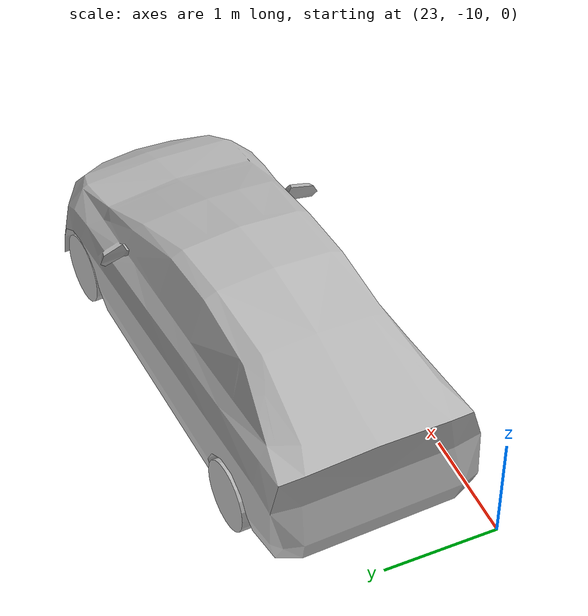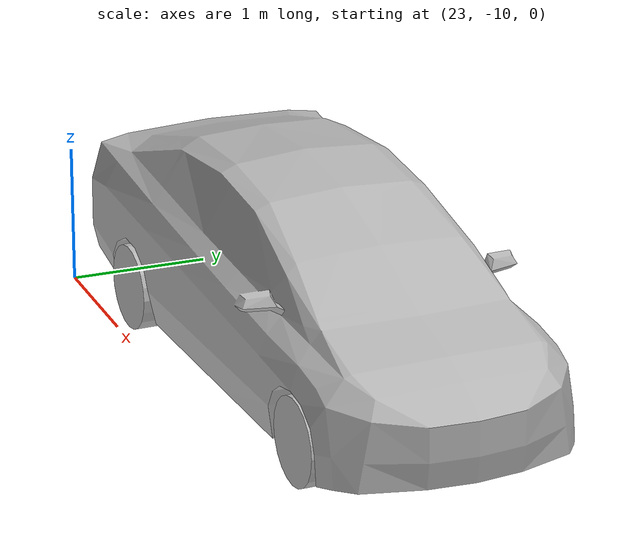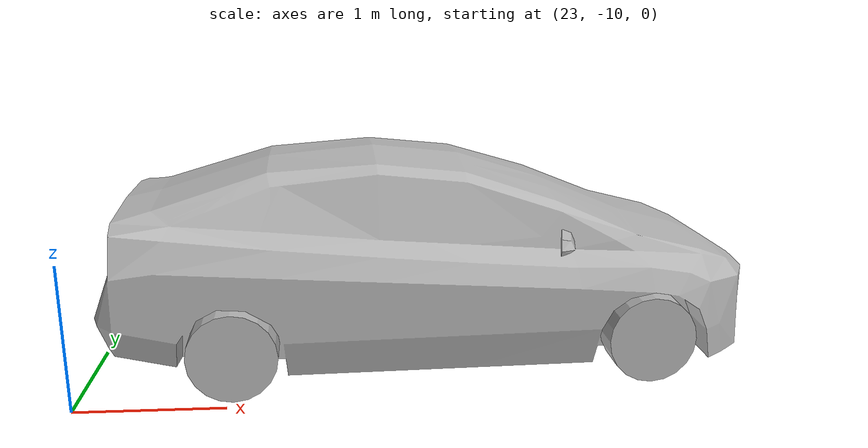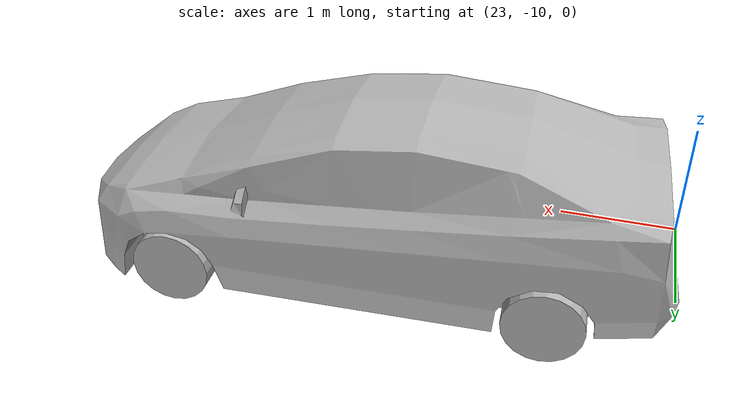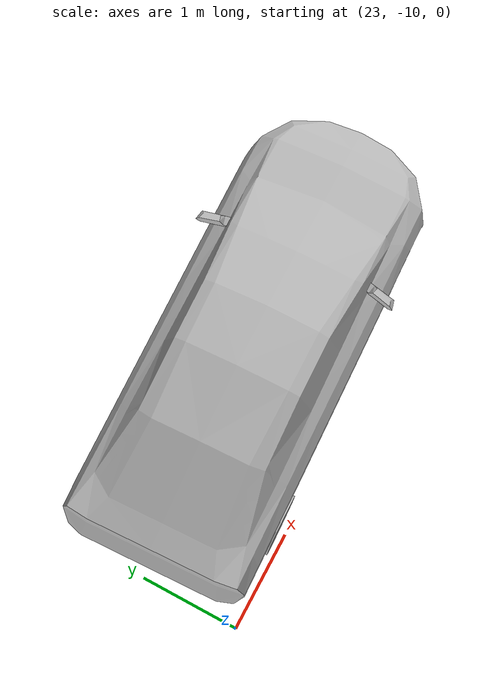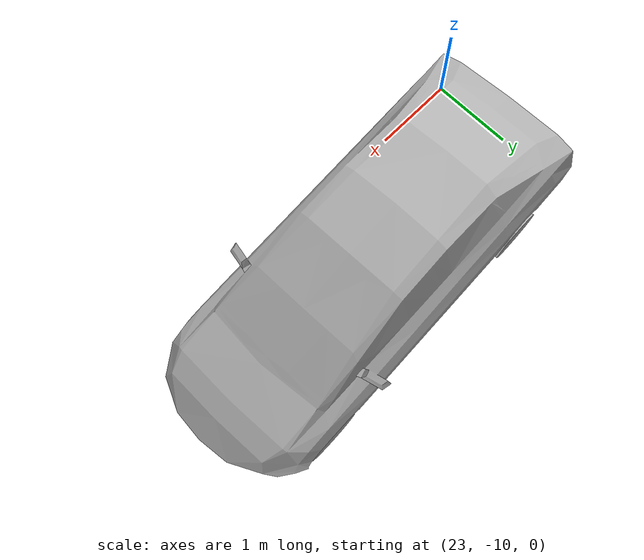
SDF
<sdf version="1.6">
 <world name="default">
  <model name="prius_clone_clone">
   <link name="base_link">
    <inertial>
     <mass>1</mass>
     <inertia><ixx>0.001</ixx><ixy>0</ixy><ixz>0</ixz><iyy>0.001</iyy><iyz>0</iyz><izz>0.001</izz></inertia>
    </inertial>
   </link>
   <link name="chassis">
    <pose>1.45 0 0 0 -0 1.57</pose>
    <inertial>
     <pose>-0 -0.002735 0.483209 0 -0 1.5708</pose>
     <mass>1371</mass>
     <inertia>
      <ixx>2591.3</ixx>
      <ixy>0.000184475</ixy>
      <ixz>-0.702035</ixz>
      <iyy>651.702</iyy>
      <iyz>2.57872e-06</iyz>
      <izz>2744.57</izz>
     </inertia>
    </inertial>
    <collision name="chassis_collision">
     <pose>0 0.05 0.625 0 -0 0</pose>
     <geometry><box><size>1.7526 2.1 0.95</size></box></geometry>
    </collision>
    <collision name="chassis_fixed_joint_lump__front_bumper_collision_1">
     <pose>0 -2 0.458488 0 -0 0</pose>
     <geometry><box><size>1.33728 0.48 0.566691</size></box></geometry>
    </collision>
    <collision name="chassis_fixed_joint_lump__hood_collision_2">
     <pose>0 -1.90084 0.676305 0.341247 -0 0</pose>
     <geometry><box><size>1.59797 0.493107 0.265468</size></box></geometry>
    </collision>
    <collision name="chassis_fixed_joint_lump__windshield_collision_3">
     <pose>0 -0.875105 1.03227 0.335476 -0 0</pose>
     <geometry><box><size>1.16838 1.65425 0.272347</size></box></geometry>
    </collision>
    <collision name="chassis_fixed_joint_lump__top_front_collision_4">
     <pose>0 0.161236 1.38604 0.13503 -0 0</pose>
     <geometry><box><size>1.27915 0.625988 0.171868</size></box></geometry>
    </collision>
    <collision name="chassis_fixed_joint_lump__top_rear_collision_5">
     <pose>0 0.817696 1.36007 -0.068997 0 0</pose>
     <geometry><box><size>1.28513 0.771189 0.226557</size></box></geometry>
    </collision>
    <collision name="chassis_fixed_joint_lump__rear_window_collision_6">
     <pose>0 1.64053 1.17513 -0.262017 0 0</pose>
     <geometry><box><size>1.26785 1.11634 0.244286</size></box></geometry>
    </collision>
    <collision name="chassis_fixed_joint_lump__trunk_collision_7">
     <pose>0 1.63706 0.88818 0 -0 0</pose>
     <geometry><box><size>1.78806 1.13899 0.482746</size></box></geometry>
    </collision>
    <collision name="chassis_fixed_joint_lump__back_bumper_collision_8">
     <pose>0 2.05445 0.57787 0 -0 0</pose>
     <geometry><box><size>1.78165 0.512093 0.581427</size></box></geometry>
    </collision>
    <visual name="chassis_visual">
     <geometry>
      <mesh>
       <scale>0.01 0.01 0.01</scale>
       <uri>/home/kostas/datmo_ws/src/car_demo-master/prius_description/meshes/hybrid_body.obj</uri>
      </mesh>
     </geometry>
    </visual>
   </link>
   <joint name="base_link_connection" type="revolute">
    <child>chassis</child>
    <parent>base_link</parent>
    <axis>
     <limit><lower>0</lower><upper>0</upper></limit>
     <dynamics>
      <damping>0</damping>
      <friction>0</friction>
      <spring_reference>0</spring_reference>
      <spring_stiffness>0</spring_stiffness>
     </dynamics>
     <use_parent_model_frame>1</use_parent_model_frame>
     <xyz>0 0 1</xyz>
    </axis>
    <physics><ode><limit><cfm>0</cfm><erp>0.2</erp></limit></ode></physics>
   </joint>
   <link name="fl_axle">
    <pose>2.86061 0.765877 0.3 0 -0 1.57</pose>
    <inertial>
     <mass>1</mass>
     <inertia><ixx>0.004</ixx><ixy>0</ixy><ixz>0</ixz><iyy>0.004</iyy><iyz>0</iyz><izz>0.004</izz></inertia>
    </inertial>
   </link>
   <joint name="front_left_steer_joint" type="revolute">
    <child>fl_axle</child>
    <parent>chassis</parent>
    <axis>
     <xyz>0 0 1</xyz>
     <limit><lower>-1e+16</lower><upper>1e+16</upper></limit>
     <dynamics><spring_reference>0</spring_reference><spring_stiffness>0</spring_stiffness></dynamics>
     <use_parent_model_frame>1</use_parent_model_frame>
    </axis>
   </joint>
   <link name="front_left_wheel">
    <pose>2.86061 0.765877 0.3 0 -0 1.57</pose>
    <inertial>
     <mass>11</mass>
     <inertia>
      <ixx>0.586312</ixx>
      <ixy>0</ixy>
      <ixz>0</ixz>
      <iyy>0.335529</iyy>
      <iyz>0</iyz>
      <izz>0.335529</izz>
     </inertia>
    </inertial>
    <collision name="front_left_wheel_collision_collision">
     <geometry><sphere><radius>0.31265</radius></sphere></geometry>
     <surface>
      <contact><ode><kp>1e+08</kp><min_depth>0.005</min_depth></ode></contact>
      <friction><ode><mu>0.9</mu><mu2>0.9</mu2></ode></friction>
     </surface>
    </collision>
    <visual name="front_left_wheel_visual">
     <geometry>
      <mesh>
       <scale>0.01 0.01 0.01</scale>
       <uri>/home/kostas/datmo_ws/src/car_demo-master/prius_description/meshes/wheel.obj</uri>
      </mesh>
     </geometry>
     <material><script><uri>__default__</uri><name>__default__</name></script></material>
    </visual>
   </link>
   <joint name="front_left_wheel_joint" type="revolute">
    <child>front_left_wheel</child>
    <parent>fl_axle</parent>
    <axis>
     <xyz>0.000796 1 0</xyz>
     <limit><lower>-1e+16</lower><upper>1e+16</upper></limit>
     <dynamics><spring_reference>0</spring_reference><spring_stiffness>0</spring_stiffness></dynamics>
     <use_parent_model_frame>1</use_parent_model_frame>
    </axis>
   </joint>
   <link name="fr_axle">
    <pose>2.85939 -0.768123 0.3 0 -0 1.57</pose>
    <inertial>
     <mass>1</mass>
     <inertia><ixx>0.004</ixx><ixy>0</ixy><ixz>0</ixz><iyy>0.004</iyy><iyz>0</iyz><izz>0.004</izz></inertia>
    </inertial>
   </link>
   <joint name="front_right_steer_joint" type="revolute">
    <child>fr_axle</child>
    <parent>chassis</parent>
    <axis>
     <xyz>0 0 1</xyz>
     <limit><lower>-1e+16</lower><upper>1e+16</upper></limit>
     <dynamics><spring_reference>0</spring_reference><spring_stiffness>0</spring_stiffness></dynamics>
     <use_parent_model_frame>1</use_parent_model_frame>
    </axis>
   </joint>
   <link name="front_right_wheel">
    <pose>2.85939 -0.768123 0.3 0 -0 1.57</pose>
    <inertial>
     <mass>11</mass>
     <inertia>
      <ixx>0.586312</ixx>
      <ixy>0</ixy>
      <ixz>0</ixz>
      <iyy>0.335529</iyy>
      <iyz>0</iyz>
      <izz>0.335529</izz>
     </inertia>
    </inertial>
    <collision name="front_right_wheel_collision_collision">
     <geometry><sphere><radius>0.31265</radius></sphere></geometry>
     <surface>
      <contact><ode><kp>1e+08</kp><min_depth>0.005</min_depth></ode></contact>
      <friction><ode><mu>0.9</mu><mu2>0.9</mu2></ode></friction>
     </surface>
    </collision>
    <visual name="front_right_wheel_visual">
     <geometry>
      <mesh>
       <scale>0.01 0.01 0.01</scale>
       <uri>/home/kostas/datmo_ws/src/car_demo-master/prius_description/meshes/wheel.obj</uri>
      </mesh>
     </geometry>
     <material><script><uri>__default__</uri><name>__default__</name></script></material>
    </visual>
   </link>
   <joint name="front_right_wheel_joint" type="revolute">
    <child>front_right_wheel</child>
    <parent>fr_axle</parent>
    <axis>
     <xyz>0.000796 1 0</xyz>
     <limit><lower>-1e+16</lower><upper>1e+16</upper></limit>
     <dynamics><spring_reference>0</spring_reference><spring_stiffness>0</spring_stiffness></dynamics>
     <use_parent_model_frame>1</use_parent_model_frame>
    </axis>
   </joint>
   <link name="rear_left_wheel">
    <pose>0.000632 0.794154 0.3 0 -0 1.57</pose>
    <inertial>
     <mass>11</mass>
     <inertia>
      <ixx>0.586312</ixx>
      <ixy>0</ixy>
      <ixz>0</ixz>
      <iyy>0.335529</iyy>
      <iyz>0</iyz>
      <izz>0.335529</izz>
     </inertia>
    </inertial>
    <collision name="rear_left_wheel_collision_collision">
     <geometry><sphere><radius>0.31265</radius></sphere></geometry>
     <surface>
      <contact><ode><kp>1e+08</kp><min_depth>0.005</min_depth></ode></contact>
      <friction><ode><mu>0.9</mu><mu2>0.9</mu2></ode></friction>
     </surface>
    </collision>
    <visual name="rear_left_wheel_visual">
     <geometry>
      <mesh>
       <scale>0.01 0.01 0.01</scale>
       <uri>/home/kostas/datmo_ws/src/car_demo-master/prius_description/meshes/wheel.obj</uri>
      </mesh>
     </geometry>
     <material><script><uri>__default__</uri><name>__default__</name></script></material>
    </visual>
   </link>
   <joint name="rear_left_wheel_joint" type="revolute">
    <child>rear_left_wheel</child>
    <parent>chassis</parent>
    <axis>
     <xyz>0.000796 1 0</xyz>
     <limit><lower>-1e+16</lower><upper>1e+16</upper></limit>
     <dynamics><spring_reference>0</spring_reference><spring_stiffness>0</spring_stiffness></dynamics>
     <use_parent_model_frame>1</use_parent_model_frame>
    </axis>
   </joint>
   <link name="rear_right_wheel">
    <pose>-0.000631 -0.791845 0.3 0 -0 1.57</pose>
    <inertial>
     <mass>11</mass>
     <inertia>
      <ixx>0.586312</ixx>
      <ixy>0</ixy>
      <ixz>0</ixz>
      <iyy>0.335529</iyy>
      <iyz>0</iyz>
      <izz>0.335529</izz>
     </inertia>
    </inertial>
    <collision name="rear_right_wheel_collision_collision">
     <geometry><sphere><radius>0.31265</radius></sphere></geometry>
     <surface>
      <contact><ode><kp>1e+08</kp><min_depth>0.005</min_depth></ode></contact>
      <friction><ode><mu>0.9</mu><mu2>0.9</mu2></ode></friction>
     </surface>
    </collision>
    <visual name="rear_right_wheel_visual">
     <geometry>
      <mesh>
       <scale>0.01 0.01 0.01</scale>
       <uri>/home/kostas/datmo_ws/src/car_demo-master/prius_description/meshes/wheel.obj</uri>
      </mesh>
     </geometry>
     <material><script><uri>__default__</uri><name>__default__</name></script></material>
    </visual>
   </link>
   <joint name="rear_right_wheel_joint" type="revolute">
    <child>rear_right_wheel</child>
    <parent>chassis</parent>
    <axis>
     <xyz>0.000796 1 0</xyz>
     <limit><lower>-1e+16</lower><upper>1e+16</upper></limit>
     <dynamics><spring_reference>0</spring_reference><spring_stiffness>0</spring_stiffness></dynamics>
     <use_parent_model_frame>1</use_parent_model_frame>
    </axis>
   </joint>
   <link name="steering_wheel">
    <pose>2.07815 0.357234 0.988243 -1.3021 0 1.57</pose>
    <inertial>
     <mass>1</mass>
     <inertia><ixx>0.145833</ixx><ixy>0</ixy><ixz>0</ixz><iyy>0.145833</iyy><iyz>0</iyz><izz>0.125</izz></inertia>
    </inertial>
    <visual name="steering_wheel_visual">
     <pose>0 0 0 1.3021 -0 0</pose>
     <geometry>
      <mesh>
       <scale>0.01 0.01 0.01</scale>
       <uri>/home/kostas/datmo_ws/src/car_demo-master/prius_description/meshes/steering_wheel.obj</uri>
      </mesh>
     </geometry>
    </visual>
   </link>
   <joint name="steering_joint" type="revolute">
    <child>steering_wheel</child>
    <parent>chassis</parent>
    <axis>
     <xyz>-0.964118 0.000768 0.265474</xyz>
     <limit><lower>-1e+16</lower><upper>1e+16</upper></limit>
     <dynamics><spring_reference>0</spring_reference><spring_stiffness>0</spring_stiffness></dynamics>
     <use_parent_model_frame>1</use_parent_model_frame>
    </axis>
   </joint>
   <plugin name="actorhybrid_drive" filename="libActor.so">
    <controlTopic>actor_2</controlTopic>
    <chassis>chassis</chassis>
    <front_left_wheel>front_left_wheel_joint</front_left_wheel>
    <front_right_wheel>front_right_wheel_joint</front_right_wheel>
    <front_left_wheel_steering>front_left_steer_joint</front_left_wheel_steering>
    <front_right_wheel_steering>front_right_steer_joint</front_right_wheel_steering>
    <back_left_wheel>rear_left_wheel_joint</back_left_wheel>
    <back_right_wheel>rear_right_wheel_joint</back_right_wheel>
    <steering_wheel>steering_joint</steering_wheel>
    <chassis_aero_force_gain>0.63045</chassis_aero_force_gain>
    <front_torque>700.4004393000001</front_torque>
    <back_torque>0</back_torque>
    <front_brake_torque>1031.28052716</front_brake_torque>
    <back_brake_torque>687.5203514400001</back_brake_torque>
    <max_speed>37.998337013956565</max_speed>
    <min_gas_flow>8.981854013171626e-05</min_gas_flow>
    <gas_efficiency>0.371</gas_efficiency>
    <battery_charge_watt_hours>291</battery_charge_watt_hours>
    <battery_discharge_watt_hours>214</battery_discharge_watt_hours>
    <max_steer>0.8458</max_steer>
    <flwheel_steering_p_gain>1e4</flwheel_steering_p_gain>
    <frwheel_steering_p_gain>1e4</frwheel_steering_p_gain>
    <flwheel_steering_i_gain>0</flwheel_steering_i_gain>
    <frwheel_steering_i_gain>0</frwheel_steering_i_gain>
    <flwheel_steering_d_gain>3e2</flwheel_steering_d_gain>
    <frwheel_steering_d_gain>3e2</frwheel_steering_d_gain>
    <robotNamespace>/</robotNamespace>
   </plugin>
   <plugin name="joint_state_publisher" filename="libgazebo_ros_joint_state_publisher.so">
    <jointName>rear_right_wheel_joint, rear_left_wheel_joint, front_right_wheel_joint, front_left_wheel_joint, front_right_steer_joint, front_left_steer_joint, steering_joint</jointName>
    <updateRate>100.0</updateRate>
    <alwaysOn>1</alwaysOn>
    <robotNamespace>/</robotNamespace>
   </plugin>
   <static>0</static>
   <plugin name="p3d" filename="libgazebo_ros_p3d.so">
    <bodyName>base_link</bodyName>
    <topicName>robot_2</topicName>
    <frameName>map</frameName>
    <updateRate>100.0</updateRate>
    <robotNamespace>/</robotNamespace>
   </plugin>
   <pose>24 -9 0.008168 -0.00022 0.000679 0.041496</pose>
  </model>
 </world>
</sdf>
